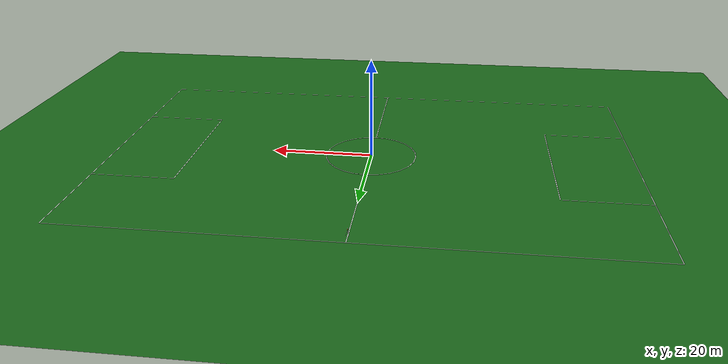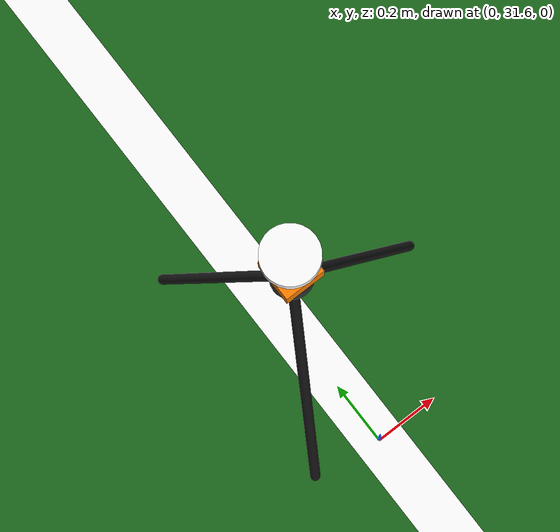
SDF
<?xml version="1.0" ?>
<sdf version="1.9">
<world name="base_world">
    <magnetic_field>6e-06 2.3e-05 -4.2e-05</magnetic_field>
    <atmosphere type="adiabatic"/>
    <spherical_coordinates>
      <surface_model>EARTH_WGS84</surface_model>
      <world_frame_orientation>ENU</world_frame_orientation>
        <latitude_deg>41.0441</latitude_deg>
        <longitude_deg>29.0017</longitude_deg>
        <elevation>0</elevation>
        <heading_deg>0</heading_deg>
    </spherical_coordinates>
    <gravity>0 0 -9.8066</gravity>

    <wind>
      <linear_velocity>1.5 0.5 0</linear_velocity>
    </wind>
    <plugin filename="gz-sim-wind-effects-system" name="gz::sim::systems::WindEffects">
      <force_approximation_scaling_factor>1</force_approximation_scaling_factor>
      <horizontal>
        <magnitude>
          <time_for_rise>10</time_for_rise>
          <sin>
            <amplitude_percent>0.1</amplitude_percent>
            <period>60</period>
          </sin>
          <noise type="gaussian">
             <mean>0</mean>
             <stddev>0.1</stddev>
          </noise>
        </magnitude>
        <direction>
          <time_for_rise>30</time_for_rise>
          <sin>
            <amplitude>5</amplitude>
            <period>20</period>
          </sin>
          <noise type="gaussian">
             <mean>0</mean>
             <stddev>0.05</stddev>
          </noise>
        </direction>
      </horizontal>
      <vertical>
        <noise type="gaussian">
           <mean>0</mean>
           <stddev>0.02</stddev>
        </noise>
      </vertical>
    </plugin>

    <plugin filename="gz-sim-physics-system" name="gz::sim::systems::Physics"></plugin>
    <plugin filename="gz-sim-scene-broadcaster-system" name="gz::sim::systems::SceneBroadcaster"></plugin>
    <plugin filename="gz-sim-user-commands-system" name="gz::sim::systems::UserCommands"></plugin>
    <plugin filename="gz-sim-contact-system" name="gz::sim::systems::Contact"></plugin>
    <plugin filename="gz-sim-imu-system" name="gz::sim::systems::Imu"></plugin>
    <plugin filename="gz-sim-air-pressure-system" name="gz::sim::systems::AirPressure"></plugin>
    <plugin filename="gz-sim-navsat-system" name="gz::sim::systems::NavSat"></plugin>
    <plugin filename="gz-sim-apply-link-wrench-system" name="gz::sim::systems::ApplyLinkWrench"></plugin>
    <plugin filename="gz-sim-sensors-system" name="gz::sim::systems::Sensors">
      <render_engine>ogre2</render_engine>
    </plugin>
    <plugin filename="gz-sim-imu-system" name="gz::sim::systems::Imu"></plugin>
    <plugin filename="gz-sim-magnetometer-system" name="gz::sim::systems::Magnetometer"></plugin>
    <plugin filename="gz-sim-air-pressure-system" name="gz::sim::systems::AirPressure"></plugin>
    <plugin filename="gz-sim-navsat-system" name="gz::sim::systems::NavSat"></plugin>
    <plugin filename="gz-sim-altimeter-system" name="gz::sim::systems::Altimeter"></plugin>
    <plugin filename="gz-sim-air-speed-system" name="gz::sim::systems::AirSpeed"></plugin>

    <physics type="ode">
      <max_step_size>0.004</max_step_size>
      <real_time_update_rate>250</real_time_update_rate>
      <real_time_factor>1.0</real_time_factor>
    </physics>

    <scene>
      <ambient>1.0 1.0 1.0 1.0</ambient>
      <background>0.5 0.8 0.95 1</background>
      <shadows>false</shadows>
      <grid>false</grid>
    </scene>

    <light type="directional" name="sun">
      <cast_shadows>false</cast_shadows>
      <pose>0 0 20 0 0 0</pose>
      <diffuse>1.0 1.0 1.0 1</diffuse>
      <specular>0.5 0.5 0.5 1</specular>
      <direction>0 0 -1</direction>
    </light>

    <model name="university_football_field">
      <static>true</static>
      <link name="link">
        <collision name="collision">
          <geometry><plane><normal>0 0 1</normal><size>105 68</size></plane></geometry>
          <surface>
            <friction>
              <ode>
                <mu>1.0</mu> <mu2>1.0</mu2> <fdir1>0 0 0</fdir1>
                <slip1>0.0</slip1>
                <slip2>0.0</slip2>
              </ode>
            </friction>
            <contact>
              <ode>
                <kp>1e13</kp> <kd>1.0</kd>
                <max_vel>0.01</max_vel>
                <min_depth>0.001</min_depth>
              </ode>
            </contact>
          </surface>
        </collision>

        <visual name="field_visual">
          <geometry><plane><normal>0 0 1</normal><size>105 68</size></plane></geometry>
          <material>
            <ambient>0.1 0.4 0.1 1</ambient>
            <diffuse>0.1 0.4 0.1 1</diffuse>
          </material>
        </visual>

        <visual name="line_center"><pose>0 0 0.01 0 0 0</pose><geometry><plane><normal>0 0 1</normal><size>0.15 68</size></plane></geometry><material><ambient>1 1 1 1</ambient><diffuse>1 1 1 1</diffuse></material></visual>
        <visual name="line_top"><pose>0 34 0.01 0 0 0</pose><geometry><plane><normal>0 0 1</normal><size>105 0.15</size></plane></geometry><material><ambient>1 1 1 1</ambient><diffuse>1 1 1 1</diffuse></material></visual>
        <visual name="line_bottom"><pose>0 -34 0.01 0 0 0</pose><geometry><plane><normal>0 0 1</normal><size>105 0.15</size></plane></geometry><material><ambient>1 1 1 1</ambient><diffuse>1 1 1 1</diffuse></material></visual>
        <visual name="line_left"><pose>-52.5 0 0.01 0 0 0</pose><geometry><plane><normal>0 0 1</normal><size>0.15 68</size></plane></geometry><material><ambient>1 1 1 1</ambient><diffuse>1 1 1 1</diffuse></material></visual>
        <visual name="line_right"><pose>52.5 0 0.01 0 0 0</pose><geometry><plane><normal>0 0 1</normal><size>0.15 68</size></plane></geometry><material><ambient>1 1 1 1</ambient><diffuse>1 1 1 1</diffuse></material></visual>

        <visual name="center_circle_white">
          <pose>0 0 0.011 0 0 0</pose>
          <geometry><cylinder><radius>9.15</radius><length>0.001</length></cylinder></geometry>
          <material><ambient>1 1 1 1</ambient><diffuse>1 1 1 1</diffuse></material>
        </visual>
        <visual name="center_circle_green">
          <pose>0 0 0.012 0 0 0</pose>
          <geometry><cylinder><radius>9.0</radius><length>0.001</length></cylinder></geometry>
          <material><ambient>0.1 0.4 0.1 1</ambient><diffuse>0.1 0.4 0.1 1</diffuse></material>
        </visual>
        <visual name="center_spot">
          <pose>0 0 0.013 0 0 0</pose>
          <geometry><cylinder><radius>0.3</radius><length>0.001</length></cylinder></geometry>
          <material><ambient>1 1 1 1</ambient><diffuse>1 1 1 1</diffuse></material>
        </visual>

        <visual name="pen_left_front"><pose>-36 0 0.015 0 0 0</pose><geometry><plane><normal>0 0 1</normal><size>0.15 30</size></plane></geometry><material><ambient>1 1 1 1</ambient><diffuse>1 1 1 1</diffuse></material></visual>
        <visual name="pen_left_top"><pose>-44.25 15 0.015 0 0 0</pose><geometry><plane><normal>0 0 1</normal><size>16.5 0.15</size></plane></geometry><material><ambient>1 1 1 1</ambient><diffuse>1 1 1 1</diffuse></material></visual>
        <visual name="pen_left_bottom"><pose>-44.25 -15 0.015 0 0 0</pose><geometry><plane><normal>0 0 1</normal><size>16.5 0.15</size></plane></geometry><material><ambient>1 1 1 1</ambient><diffuse>1 1 1 1</diffuse></material></visual>

        <visual name="pen_right_front"><pose>36 0 0.015 0 0 0</pose><geometry><plane><normal>0 0 1</normal><size>0.15 30</size></plane></geometry><material><ambient>1 1 1 1</ambient><diffuse>1 1 1 1</diffuse></material></visual>
        <visual name="pen_right_top"><pose>44.25 15 0.015 0 0 0</pose><geometry><plane><normal>0 0 1</normal><size>16.5 0.15</size></plane></geometry><material><ambient>1 1 1 1</ambient><diffuse>1 1 1 1</diffuse></material></visual>
        <visual name="pen_right_bottom"><pose>44.25 -15 0.015 0 0 0</pose><geometry><plane><normal>0 0 1</normal><size>16.5 0.15</size></plane></geometry><material><ambient>1 1 1 1</ambient><diffuse>1 1 1 1</diffuse></material></visual>
      </link>
    </model>

    <include>
      <name>rtk_base_station</name>
      <uri>model://rtk_base_station</uri>
      <pose>0 32 0 0 0 0</pose>
    </include>
  </world>
</sdf>

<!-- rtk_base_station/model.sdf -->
<sdf version="1.9">
  <model name="rtk_base_station">
    <static>true</static>

    <link name="base_link">

      <visual name="hub_visual">
        <pose>0 0 1.2 0 0 0</pose>
        <geometry><cylinder><radius>0.06</radius><length>0.08</length></cylinder></geometry>
        <material><ambient>0.2 0.2 0.2 1</ambient><diffuse>0.2 0.2 0.2 1</diffuse></material>
      </visual>
      <collision name="hub_collision">
        <pose>0 0 1.2 0 0 0</pose>
        <geometry><cylinder><radius>0.06</radius><length>0.08</length></cylinder></geometry>
      </collision>

      <visual name="leg1_visual">
        <pose>0.21 0 0.6 0 -0.34 0</pose>
        <geometry><cylinder><radius>0.015</radius><length>1.3</length></cylinder></geometry>
        <material><ambient>0.1 0.1 0.1 1</ambient><diffuse>0.1 0.1 0.1 1</diffuse></material>
      </visual>
      <collision name="leg1_collision">
        <pose>0.21 0 0.6 0 -0.34 0</pose>
        <geometry><cylinder><radius>0.015</radius><length>1.3</length></cylinder></geometry>
      </collision>

      <visual name="leg2_visual">
        <pose>-0.105 0.1818 0.6 0 -0.34 2.0944</pose>
        <geometry><cylinder><radius>0.015</radius><length>1.3</length></cylinder></geometry>
        <material><ambient>0.1 0.1 0.1 1</ambient><diffuse>0.1 0.1 0.1 1</diffuse></material>
      </visual>
      <collision name="leg2_collision">
        <pose>-0.105 0.1818 0.6 0 -0.34 2.0944</pose>
        <geometry><cylinder><radius>0.015</radius><length>1.3</length></cylinder></geometry>
      </collision>

      <visual name="leg3_visual">
        <pose>-0.105 -0.1818 0.6 0 -0.34 -2.0944</pose>
        <geometry><cylinder><radius>0.015</radius><length>1.3</length></cylinder></geometry>
        <material><ambient>0.1 0.1 0.1 1</ambient><diffuse>0.1 0.1 0.1 1</diffuse></material>
      </visual>
      <collision name="leg3_collision">
        <pose>-0.105 -0.1818 0.6 0 -0.34 -2.0944</pose>
        <geometry><cylinder><radius>0.015</radius><length>1.3</length></cylinder></geometry>
      </collision>

      <visual name="stalk_visual">
        <pose>0 0 1.35 0 0 0</pose>
        <geometry><cylinder><radius>0.012</radius><length>0.3</length></cylinder></geometry>
        <material><ambient>0.7 0.7 0.7 1</ambient><diffuse>0.8 0.8 0.8 1</diffuse></material>
      </visual>
      <collision name="stalk_collision">
        <pose>0 0 1.35 0 0 0</pose>
        <geometry><cylinder><radius>0.012</radius><length>0.3</length></cylinder></geometry>
      </collision>

      <visual name="receiver_box_visual">
        <pose>0 0 1.3 0 0 0</pose>
        <geometry><box><size>0.12 0.12 0.08</size></box></geometry>
        <material><ambient>0.9 0.4 0.0 1</ambient><diffuse>1.0 0.5 0.0 1</diffuse></material>
      </visual>
      <collision name="receiver_box_collision">
        <pose>0 0 1.3 0 0 0</pose>
        <geometry><box><size>0.12 0.12 0.08</size></box></geometry>
      </collision>

      <visual name="antenna_visual">
        <pose>0 0 1.52 0 0 0</pose>
        <geometry><cylinder><radius>0.08</radius><length>0.04</length></cylinder></geometry>
        <material><ambient>0.9 0.9 0.9 1</ambient><diffuse>1.0 1.0 1.0 1</diffuse></material>
      </visual>
      <collision name="antenna_collision">
        <pose>0 0 1.52 0 0 0</pose>
        <geometry><cylinder><radius>0.08</radius><length>0.04</length></cylinder></geometry>
      </collision>

      <sensor name="navsat_sensor" type="navsat">
        <always_on>1</always_on>
        <update_rate>1</update_rate>
      </sensor>
    </link>
  </model>
</sdf>
